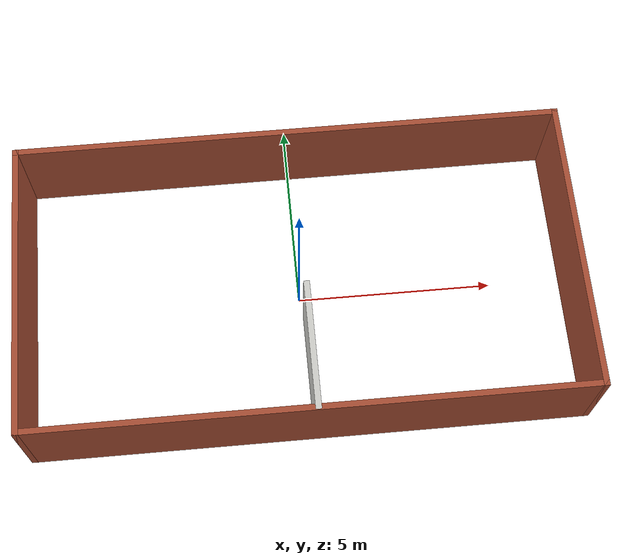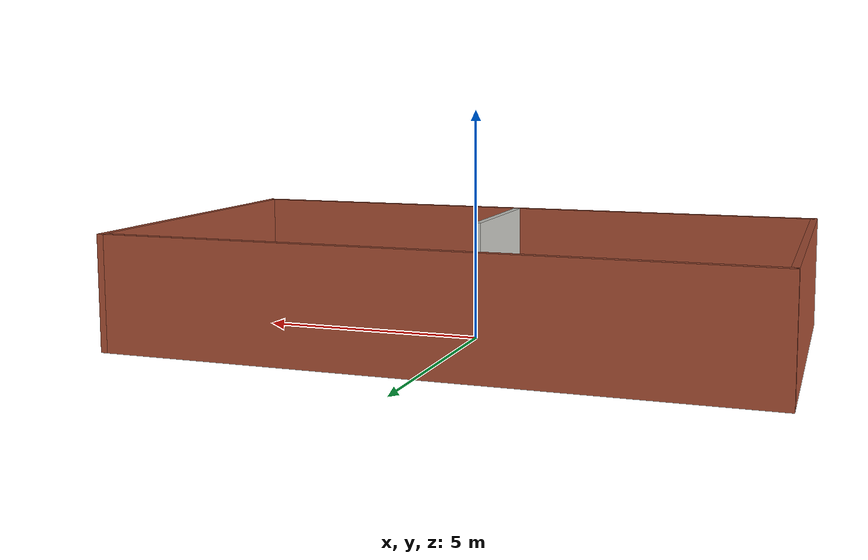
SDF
<?xml version='1.0'?>
<sdf version='1.6'>
  <model name='model_pk'>
    <link name='Wall_12'>
      <pose frame=''>0.129835 -2.1074 0 0 -0 1.5708</pose>
      <self_collide>0</self_collide>
      <kinematic>0</kinematic>
      <visual name='Wall_12_Visual'>
        <pose frame=''>0 0 1.25 0 -0 0</pose>
        <geometry>
          <box>
            <size>3.25 0.15 2.5</size>
          </box>
        </geometry>
        <material>
          <script>
            <uri>file://media/materials/scripts/gazebo.material</uri>
            <name>Gazebo/CeilingTiled</name>
          </script>
          <ambient>1 1 1 1</ambient>
          <shader type='pixel'/>
          <diffuse>1 1 1 1</diffuse>
          <specular>0 0 0 1</specular>
          <emissive>0 0 0 1</emissive>
        </material>
        <meta>
          <layer>0</layer>
        </meta>
        <transparency>0</transparency>
        <cast_shadows>1</cast_shadows>
      </visual>
      <collision name='Wall_12_Collision'>
        <laser_retro>0</laser_retro>
        <max_contacts>10</max_contacts>
        <pose frame=''>0 0 1.25 0 -0 0</pose>
        <geometry>
          <box>
            <size>3.25 0.15 2.5</size>
          </box>
        </geometry>
        <surface>
          <friction>
            <ode>
              <mu>1</mu>
              <mu2>1</mu2>
              <fdir1>0 0 0</fdir1>
              <slip1>0</slip1>
              <slip2>0</slip2>
            </ode>
            <torsional>
              <coefficient>1</coefficient>
              <patch_radius>0</patch_radius>
              <surface_radius>0</surface_radius>
              <use_patch_radius>1</use_patch_radius>
              <ode>
                <slip>0</slip>
              </ode>
            </torsional>
          </friction>
          <bounce>
            <restitution_coefficient>0</restitution_coefficient>
            <threshold>1e+06</threshold>
          </bounce>
          <contact>
            <collide_without_contact>0</collide_without_contact>
            <collide_without_contact_bitmask>1</collide_without_contact_bitmask>
            <collide_bitmask>1</collide_bitmask>
            <ode>
              <soft_cfm>0</soft_cfm>
              <soft_erp>0.2</soft_erp>
              <kp>1e+13</kp>
              <kd>1</kd>
              <max_vel>0.01</max_vel>
              <min_depth>0</min_depth>
            </ode>
            <bullet>
              <split_impulse>1</split_impulse>
              <split_impulse_penetration_threshold>-0.01</split_impulse_penetration_threshold>
              <soft_cfm>0</soft_cfm>
              <soft_erp>0.2</soft_erp>
              <kp>1e+13</kp>
              <kd>1</kd>
            </bullet>
          </contact>
        </surface>
      </collision>
    </link>
    <link name='Wall_5'>
      <pose frame=''>-6.925 0 0 0 0 -1.5708</pose>
      <self_collide>0</self_collide>
      <kinematic>0</kinematic>
      <visual name='Wall_5_Visual'>
        <pose frame=''>0 0 1.25 0 -0 0</pose>
        <geometry>
          <box>
            <size>7.5 0.15 2.5</size>
          </box>
        </geometry>
        <material>
          <script>
            <uri>file://media/materials/scripts/gazebo.material</uri>
            <name>Gazebo/Bricks</name>
          </script>
          <ambient>1 1 1 1</ambient>
          <shader type='pixel'/>
          <diffuse>1 1 1 1</diffuse>
          <specular>0.2 0.2 0.2 1</specular>
          <emissive>0 0 0 1</emissive>
        </material>
        <meta>
          <layer>0</layer>
        </meta>
        <transparency>0</transparency>
        <cast_shadows>1</cast_shadows>
      </visual>
      <collision name='Wall_5_Collision'>
        <laser_retro>0</laser_retro>
        <max_contacts>10</max_contacts>
        <pose frame=''>0 0 1.25 0 -0 0</pose>
        <geometry>
          <box>
            <size>7.5 0.15 2.5</size>
          </box>
        </geometry>
        <surface>
          <friction>
            <ode>
              <mu>1</mu>
              <mu2>1</mu2>
              <fdir1>0 0 0</fdir1>
              <slip1>0</slip1>
              <slip2>0</slip2>
            </ode>
            <torsional>
              <coefficient>1</coefficient>
              <patch_radius>0</patch_radius>
              <surface_radius>0</surface_radius>
              <use_patch_radius>1</use_patch_radius>
              <ode>
                <slip>0</slip>
              </ode>
            </torsional>
          </friction>
          <bounce>
            <restitution_coefficient>0</restitution_coefficient>
            <threshold>1e+06</threshold>
          </bounce>
          <contact>
            <collide_without_contact>0</collide_without_contact>
            <collide_without_contact_bitmask>1</collide_without_contact_bitmask>
            <collide_bitmask>1</collide_bitmask>
            <ode>
              <soft_cfm>0</soft_cfm>
              <soft_erp>0.2</soft_erp>
              <kp>1e+13</kp>
              <kd>1</kd>
              <max_vel>0.01</max_vel>
              <min_depth>0</min_depth>
            </ode>
            <bullet>
              <split_impulse>1</split_impulse>
              <split_impulse_penetration_threshold>-0.01</split_impulse_penetration_threshold>
              <soft_cfm>0</soft_cfm>
              <soft_erp>0.2</soft_erp>
              <kp>1e+13</kp>
              <kd>1</kd>
            </bullet>
          </contact>
        </surface>
      </collision>
    </link>
    <link name='Wall_6'>
      <pose frame=''>0 -3.675 0 0 -0 0</pose>
      <self_collide>0</self_collide>
      <kinematic>0</kinematic>
      <visual name='Wall_6_Visual'>
        <pose frame=''>0 0 1.25 0 -0 0</pose>
        <geometry>
          <box>
            <size>14 0.15 2.5</size>
          </box>
        </geometry>
        <material>
          <script>
            <uri>file://media/materials/scripts/gazebo.material</uri>
            <name>Gazebo/Bricks</name>
          </script>
          <ambient>0.333333 1 0 1</ambient>
          <shader type='pixel'/>
          <diffuse>1 1 1 1</diffuse>
          <specular>0.2 0.2 0.2 1</specular>
          <emissive>0 0 0 1</emissive>
        </material>
        <meta>
          <layer>0</layer>
        </meta>
        <transparency>0</transparency>
        <cast_shadows>1</cast_shadows>
      </visual>
      <collision name='Wall_6_Collision'>
        <laser_retro>0</laser_retro>
        <max_contacts>10</max_contacts>
        <pose frame=''>0 0 1.25 0 -0 0</pose>
        <geometry>
          <box>
            <size>14 0.15 2.5</size>
          </box>
        </geometry>
        <surface>
          <friction>
            <ode>
              <mu>1</mu>
              <mu2>1</mu2>
              <fdir1>0 0 0</fdir1>
              <slip1>0</slip1>
              <slip2>0</slip2>
            </ode>
            <torsional>
              <coefficient>1</coefficient>
              <patch_radius>0</patch_radius>
              <surface_radius>0</surface_radius>
              <use_patch_radius>1</use_patch_radius>
              <ode>
                <slip>0</slip>
              </ode>
            </torsional>
          </friction>
          <bounce>
            <restitution_coefficient>0</restitution_coefficient>
            <threshold>1e+06</threshold>
          </bounce>
          <contact>
            <collide_without_contact>0</collide_without_contact>
            <collide_without_contact_bitmask>1</collide_without_contact_bitmask>
            <collide_bitmask>1</collide_bitmask>
            <ode>
              <soft_cfm>0</soft_cfm>
              <soft_erp>0.2</soft_erp>
              <kp>1e+13</kp>
              <kd>1</kd>
              <max_vel>0.01</max_vel>
              <min_depth>0</min_depth>
            </ode>
            <bullet>
              <split_impulse>1</split_impulse>
              <split_impulse_penetration_threshold>-0.01</split_impulse_penetration_threshold>
              <soft_cfm>0</soft_cfm>
              <soft_erp>0.2</soft_erp>
              <kp>1e+13</kp>
              <kd>1</kd>
            </bullet>
          </contact>
        </surface>
      </collision>
    </link>
    <link name='Wall_7'>
      <pose frame=''>6.925 0 0 0 -0 1.5708</pose>
      <self_collide>0</self_collide>
      <kinematic>0</kinematic>
      <visual name='Wall_7_Visual'>
        <pose frame=''>0 0 1.25 0 -0 0</pose>
        <geometry>
          <box>
            <size>7.5 0.15 2.5</size>
          </box>
        </geometry>
        <material>
          <script>
            <uri>file://media/materials/scripts/gazebo.material</uri>
            <name>Gazebo/Bricks</name>
          </script>
          <ambient>0 0.333333 1 1</ambient>
          <shader type='pixel'/>
          <diffuse>1 1 1 1</diffuse>
          <specular>0.2 0.2 0.2 1</specular>
          <emissive>0 0 0 1</emissive>
        </material>
        <meta>
          <layer>0</layer>
        </meta>
        <transparency>0</transparency>
        <cast_shadows>1</cast_shadows>
      </visual>
      <collision name='Wall_7_Collision'>
        <laser_retro>0</laser_retro>
        <max_contacts>10</max_contacts>
        <pose frame=''>0 0 1.25 0 -0 0</pose>
        <geometry>
          <box>
            <size>7.5 0.15 2.5</size>
          </box>
        </geometry>
        <surface>
          <friction>
            <ode>
              <mu>1</mu>
              <mu2>1</mu2>
              <fdir1>0 0 0</fdir1>
              <slip1>0</slip1>
              <slip2>0</slip2>
            </ode>
            <torsional>
              <coefficient>1</coefficient>
              <patch_radius>0</patch_radius>
              <surface_radius>0</surface_radius>
              <use_patch_radius>1</use_patch_radius>
              <ode>
                <slip>0</slip>
              </ode>
            </torsional>
          </friction>
          <bounce>
            <restitution_coefficient>0</restitution_coefficient>
            <threshold>1e+06</threshold>
          </bounce>
          <contact>
            <collide_without_contact>0</collide_without_contact>
            <collide_without_contact_bitmask>1</collide_without_contact_bitmask>
            <collide_bitmask>1</collide_bitmask>
            <ode>
              <soft_cfm>0</soft_cfm>
              <soft_erp>0.2</soft_erp>
              <kp>1e+13</kp>
              <kd>1</kd>
              <max_vel>0.01</max_vel>
              <min_depth>0</min_depth>
            </ode>
            <bullet>
              <split_impulse>1</split_impulse>
              <split_impulse_penetration_threshold>-0.01</split_impulse_penetration_threshold>
              <soft_cfm>0</soft_cfm>
              <soft_erp>0.2</soft_erp>
              <kp>1e+13</kp>
              <kd>1</kd>
            </bullet>
          </contact>
        </surface>
      </collision>
    </link>
    <link name='Wall_8'>
      <pose frame=''>0 3.675 0 0 -0 3.14159</pose>
      <inertial>
        <mass>1</mass>
        <pose frame=''>0 0 0 0 -0 0</pose>
        <inertia>
          <ixx>1</ixx>
          <ixy>0</ixy>
          <ixz>0</ixz>
          <iyy>1</iyy>
          <iyz>0</iyz>
          <izz>1</izz>
        </inertia>
      </inertial>
      <self_collide>0</self_collide>
      <kinematic>0</kinematic>
      <gravity>1</gravity>
      <visual name='Wall_8_Visual'>
        <pose frame=''>0 0 1.25 0 -0 0</pose>
        <geometry>
          <box>
            <size>14 0.15 2.5</size>
          </box>
        </geometry>
        <material>
          <script>
            <uri>file://media/materials/scripts/gazebo.material</uri>
            <name>Gazebo/Bricks</name>
          </script>
          <ambient>0.5 0.4 0 1</ambient>
          <shader type='pixel'>
            <normal_map>__default__</normal_map>
          </shader>
          <diffuse>1 1 1 1</diffuse>
          <specular>0.2 0.2 0.2 1</specular>
          <emissive>0 0 0 1</emissive>
        </material>
        <meta>
          <layer>0</layer>
        </meta>
        <transparency>0</transparency>
        <cast_shadows>1</cast_shadows>
      </visual>
      <collision name='Wall_8_Collision'>
        <laser_retro>0</laser_retro>
        <max_contacts>10</max_contacts>
        <pose frame=''>0 0 1.25 0 -0 0</pose>
        <geometry>
          <box>
            <size>14 0.15 2.5</size>
          </box>
        </geometry>
        <surface>
          <friction>
            <ode>
              <mu>1</mu>
              <mu2>1</mu2>
              <fdir1>0 0 0</fdir1>
              <slip1>0</slip1>
              <slip2>0</slip2>
            </ode>
            <torsional>
              <coefficient>1</coefficient>
              <patch_radius>0</patch_radius>
              <surface_radius>0</surface_radius>
              <use_patch_radius>1</use_patch_radius>
              <ode>
                <slip>0</slip>
              </ode>
            </torsional>
          </friction>
          <bounce>
            <restitution_coefficient>0</restitution_coefficient>
            <threshold>1e+06</threshold>
          </bounce>
          <contact>
            <collide_without_contact>0</collide_without_contact>
            <collide_without_contact_bitmask>1</collide_without_contact_bitmask>
            <collide_bitmask>1</collide_bitmask>
            <ode>
              <soft_cfm>0</soft_cfm>
              <soft_erp>0.2</soft_erp>
              <kp>1e+13</kp>
              <kd>1</kd>
              <max_vel>0.01</max_vel>
              <min_depth>0</min_depth>
            </ode>
            <bullet>
              <split_impulse>1</split_impulse>
              <split_impulse_penetration_threshold>-0.01</split_impulse_penetration_threshold>
              <soft_cfm>0</soft_cfm>
              <soft_erp>0.2</soft_erp>
              <kp>1e+13</kp>
              <kd>1</kd>
            </bullet>
          </contact>
        </surface>
      </collision>
    </link>
    <static>1</static>
    <allow_auto_disable>1</allow_auto_disable>
  </model>
</sdf>
